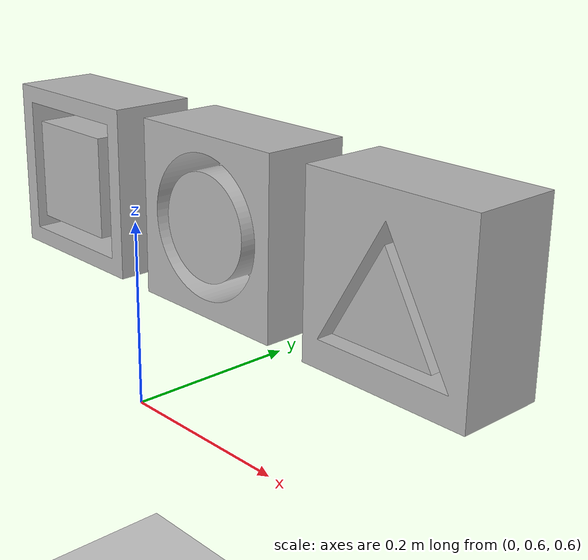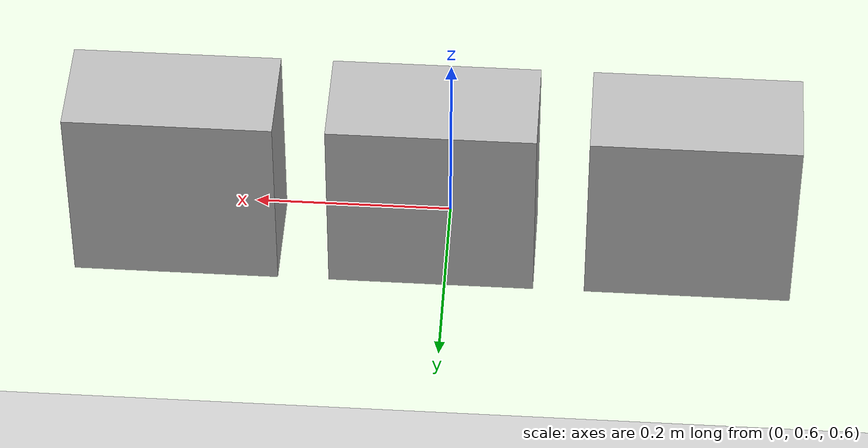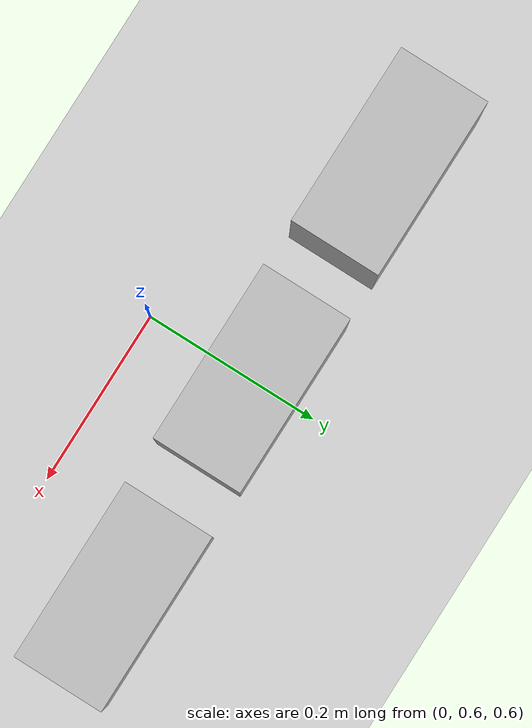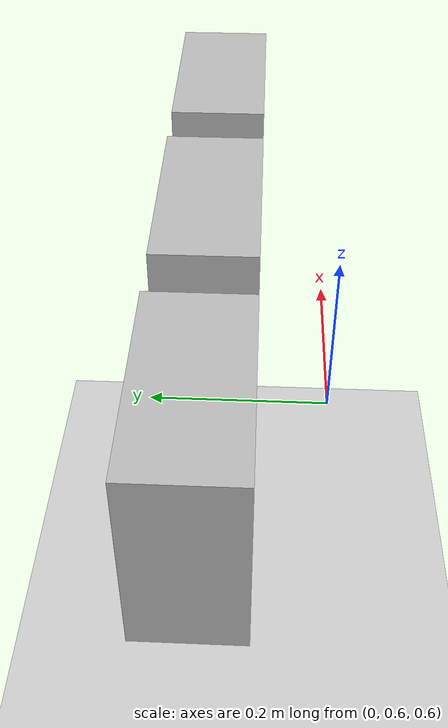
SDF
<?xml version="1.0" ?>

<sdf version="1.6">
	<world name="default">
		<scene>
      <ambient>0.4 0.4 0.4 1</ambient>
      <background>0.25 0.25 0.25 1</background>
      <shadows>true</shadows>
    </scene>
    <light type="directional" name="some_light">
      <diffuse>0.7 0.7 0.7 0</diffuse>
      <specular>1 1 1 0</specular>
      <direction>-1 -1 -1</direction>
    </light>
		<!-- A global light source -->
		<include>
			<uri>model://sun</uri>
		</include>

		<!-- A ground plane -->
		<include>
			<uri>model://ground_plane</uri>
		</include>

		<model name='big_square_path'>
      <pose frame=''>-0.25 0.78 0.78 1.57 0 0</pose>
      <static>true</static>
      <link name='link'>
        <inertial>
          <mass>1</mass>
        </inertial>
        <collision name='collision'>
          <geometry>
            <mesh>
              <uri>model://bigSquare/BigSquare.stl</uri>
              <scale>0.001 0.001 0.001</scale>
            </mesh>
          </geometry>
          <max_contacts>10</max_contacts>
          <surface>
            <contact>
              <ode/>
            </contact>
            <bounce/>
            <friction>
              <torsional>
                <ode/>
              </torsional>
              <ode/>
            </friction>
          </surface>
        </collision>
        <visual name='visual'>
          <geometry>
            <mesh>
              <uri>model://bigSquare/BigSquare.stl</uri>
              <scale>0.001 0.001 0.001</scale>
            </mesh>
          </geometry>
        </visual>
        <self_collide>0</self_collide>
        <enable_wind>0</enable_wind>
        <kinematic>0</kinematic>
      </link>
    </model>

		<model name='big_circle_path'>
      <pose frame=''>0.0 0.78 0.78 1.57 0 0</pose>
      <static>true</static>
      <link name='link'>
        <inertial>
          <mass>1</mass>
        </inertial>
        <collision name='collision'>
          <geometry>
            <mesh>
              <uri>model://izel/BigCircle.stl</uri>
              <scale>0.001 0.001 0.001</scale>
            </mesh>
          </geometry>
          <max_contacts>10</max_contacts>
          <surface>
            <contact>
              <ode/>
            </contact>
            <bounce/>
            <friction>
              <torsional>
                <ode/>
              </torsional>
              <ode/>
            </friction>
          </surface>
        </collision>
        <visual name='visual'>
          <geometry>
            <mesh>
              <uri>model://izel/BigCircle.stl</uri>
              <scale>0.001 0.001 0.001</scale>
            </mesh>
          </geometry>
        </visual>
        <self_collide>0</self_collide>
        <enable_wind>0</enable_wind>
        <kinematic>0</kinematic>
      </link>
    </model>

		<model name='big_triangle_path'>
      <pose frame=''>0.25 0.78 0.78 1.57 0 0</pose>
      <static>true</static>
      <link name='link'>
        <inertial>
          <mass>1</mass>
        </inertial>
        <collision name='collision'>
          <geometry>
            <mesh>
              <uri>model://bigTriangle/BigTriangle.stl</uri>
              <scale>0.001 0.001 0.001</scale>
            </mesh>
          </geometry>
          <max_contacts>10</max_contacts>
          <surface>
            <contact>
              <ode/>
            </contact>
            <bounce/>
            <friction>
              <torsional>
                <ode/>
              </torsional>
              <ode/>
            </friction>
          </surface>
        </collision>
        <visual name='visual'>
          <geometry>
            <mesh>
              <uri>model://bigTriangle/BigTriangle.stl</uri>
              <scale>0.001 0.001 0.001</scale>
            </mesh>
          </geometry>
        </visual>
        <self_collide>0</self_collide>
        <enable_wind>0</enable_wind>
        <kinematic>0</kinematic>
      </link>
    </model>

	</world>
</sdf>
